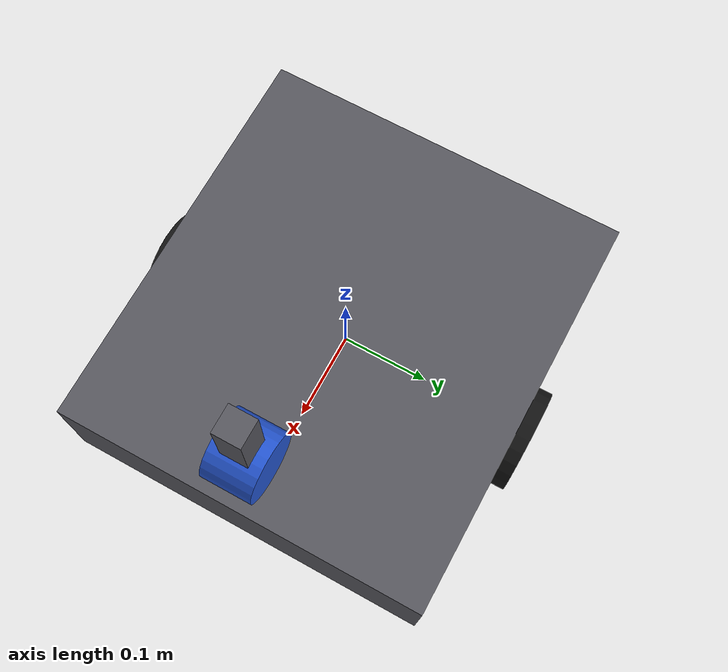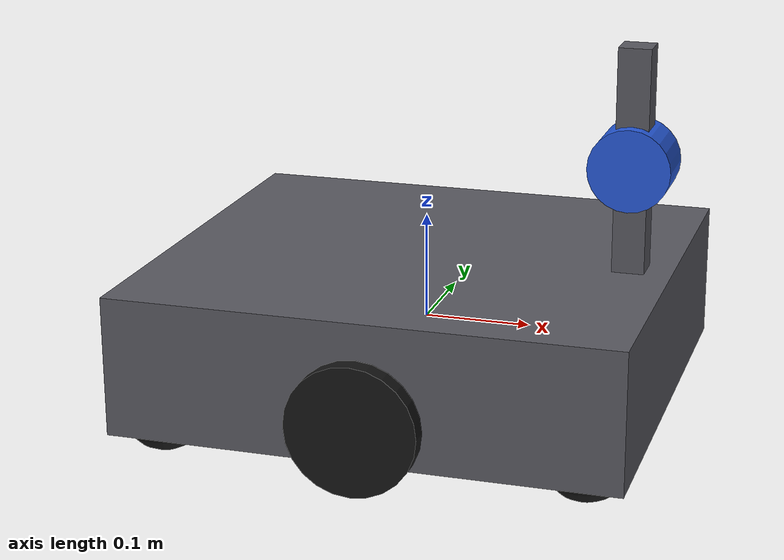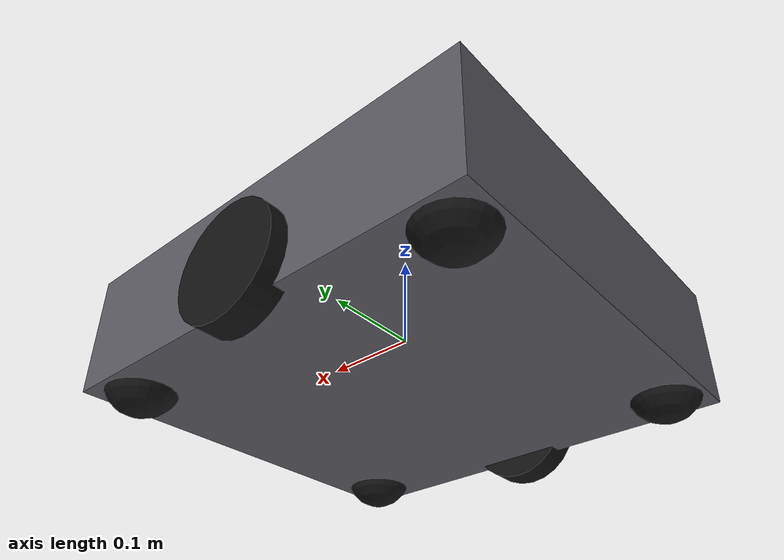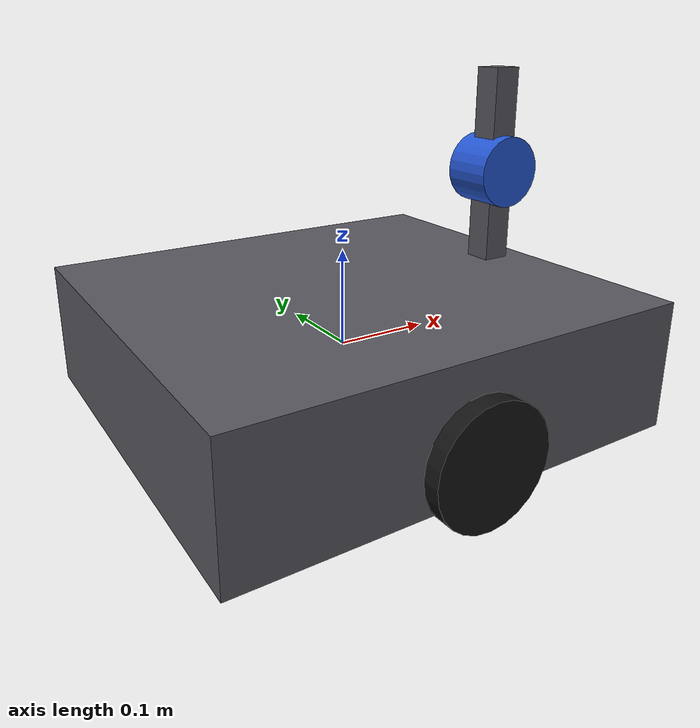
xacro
<?xml version="1.0"?>
<robot name="amr_robot" xmlns:xacro="http://www.ros.org/wiki/xacro">

  <!-- AMR REAL ROBOT DESCRIPTION                                -->
  <!-- Real robot only: geometry + frames                        -->
  <!-- Root body frame: base_link                                -->
  <!-- Convention: +x forward, +y left, +z up                    -->
  <!-- No Gazebo plugins                                         -->

  <!-- ===================== CONSTANTS ========================= -->
  <xacro:property name="pi_num" value="3.1415926535897931"/>

  <!-- ===================== BASE ============================== -->
  <xacro:property name="base_length" value="0.470"/>
  <xacro:property name="base_width"  value="0.430"/>
  <xacro:property name="base_height" value="0.130"/>
  <xacro:property name="base_mass"   value="4.0"/>
  <xacro:property name="ground_clearance" value="0.023"/>

  <!-- base_link is at chassis geometric center -->
  <xacro:property name="base_link_z" value="${ground_clearance + base_height/2.0}"/>

  <!-- ===================== DRIVE WHEELS ====================== -->
  <xacro:property name="wheel_radius"     value="0.060"/>
  <xacro:property name="wheel_width"      value="0.030"/>
  <xacro:property name="wheel_mass"       value="0.30"/>
  <xacro:property name="wheel_separation" value="0.435"/>

  <xacro:property name="wheel_x" value="0.000"/>
  <xacro:property name="wheel_y" value="${wheel_separation/2.0}"/>
  <xacro:property name="wheel_z" value="${wheel_radius - base_link_z}"/>

  <!-- ===================== CASTERS =========================== -->
  <xacro:property name="caster_radius" value="0.040"/>
  <xacro:property name="caster_width"  value="0.030"/>
  <xacro:property name="caster_mass"   value="0.10"/>

  <xacro:property name="caster_x_front" value="${ base_length/2.0 - caster_radius }"/>
  <xacro:property name="caster_x_rear"  value="${-base_length/2.0 + caster_radius }"/>
  <xacro:property name="caster_y_left"  value="${ base_width/2.0  - caster_radius }"/>
  <xacro:property name="caster_y_right" value="${-base_width/2.0  + caster_radius }"/>
  <xacro:property name="caster_z"       value="${caster_radius - base_link_z}"/>

  <!-- ===================== LIDAR ============================= -->
  <!-- Front side is +x -->
  <xacro:property name="lidar_radius" value="0.038"/>
  <xacro:property name="lidar_height" value="0.055"/>
  <xacro:property name="lidar_x" value="0.195"/>
  <xacro:property name="lidar_y" value="0.000"/>
  <xacro:property name="lidar_z_from_ground" value="0.388"/>
  <xacro:property name="lidar_z" value="${lidar_z_from_ground - base_link_z}"/>
  <xacro:property name="lidar_roll"  value="0.0"/>
  <xacro:property name="lidar_pitch" value="0.0"/>
  <xacro:property name="lidar_yaw"   value="${pi_num}"/>

  <xacro:property name="lidar_pole_size_x" value="0.030"/>
  <xacro:property name="lidar_pole_size_y" value="0.030"/>
  <xacro:property name="lidar_pole_height" value="${lidar_z - lidar_height/2.0}"/>
  <xacro:property name="lidar_pole_z" value="${lidar_pole_height/2.0}"/>

  <!-- ===================== IMU =============================== -->
  <xacro:property name="imu_size_x" value="0.040"/>
  <xacro:property name="imu_size_y" value="0.040"/>
  <xacro:property name="imu_size_z" value="0.015"/>
  <xacro:property name="imu_mass"   value="0.05"/>

  <xacro:property name="imu_x" value="0.000"/>
  <xacro:property name="imu_y" value="0.000"/>
  <xacro:property name="imu_z_from_ground" value="0.140"/>
  <xacro:property name="imu_z" value="${imu_z_from_ground - base_link_z}"/>
  <xacro:property name="imu_roll"  value="0.0"/>
  <xacro:property name="imu_pitch" value="0.0"/>
  <xacro:property name="imu_yaw"   value="0.0"/>

  <!-- ===================== MATERIALS ========================= -->
  <material name="base_gray">
    <color rgba="0.35 0.35 0.38 1.0"/>
  </material>

  <material name="wheel_black">
    <color rgba="0.08 0.08 0.08 1.0"/>
  </material>

  <material name="sensor_blue">
    <color rgba="0.15 0.35 0.85 1.0"/>
  </material>

  <material name="sensor_green">
    <color rgba="0.10 0.65 0.25 1.0"/>
  </material>

  <!-- ===================== MACROS ============================ -->
  <xacro:macro name="box_inertial" params="mass x y z">
    <inertial>
      <mass value="${mass}"/>
      <origin xyz="0 0 0" rpy="0 0 0"/>
      <inertia
        ixx="${(mass/12.0) * (y*y + z*z)}"
        ixy="0.0"
        ixz="0.0"
        iyy="${(mass/12.0) * (x*x + z*z)}"
        iyz="0.0"
        izz="${(mass/12.0) * (x*x + y*y)}"/>
    </inertial>
  </xacro:macro>

  <xacro:macro name="cylinder_y_inertial" params="mass radius length">
    <inertial>
      <mass value="${mass}"/>
      <origin xyz="0 0 0" rpy="0 0 0"/>
      <inertia
        ixx="${(mass/12.0) * (3.0*radius*radius + length*length)}"
        ixy="0.0"
        ixz="0.0"
        iyy="${0.5 * mass * radius * radius}"
        iyz="0.0"
        izz="${(mass/12.0) * (3.0*radius*radius + length*length)}"/>
    </inertial>
  </xacro:macro>

  <xacro:macro name="sphere_inertial" params="mass radius">
    <inertial>
      <mass value="${mass}"/>
      <origin xyz="0 0 0" rpy="0 0 0"/>
      <inertia
        ixx="${0.4 * mass * radius * radius}"
        ixy="0.0"
        ixz="0.0"
        iyy="${0.4 * mass * radius * radius}"
        iyz="0.0"
        izz="${0.4 * mass * radius * radius}"/>
    </inertial>
  </xacro:macro>

  <!-- ===================== BASE LINK ========================= -->
  <link name="base_link">
    <visual>
      <origin xyz="0 0 0" rpy="0 0 0"/>
      <geometry>
        <box size="${base_length} ${base_width} ${base_height}"/>
      </geometry>
      <material name="base_gray"/>
    </visual>

    <collision>
      <origin xyz="0 0 0" rpy="0 0 0"/>
      <geometry>
        <box size="${base_length} ${base_width} ${base_height}"/>
      </geometry>
    </collision>

    <xacro:box_inertial mass="${base_mass}" x="${base_length}" y="${base_width}" z="${base_height}"/>
  </link>

  <!-- ===================== LEFT DRIVE WHEEL ================== -->
  <link name="left_wheel_link">
    <visual>
      <origin xyz="0 0 0" rpy="${-pi_num/2} 0 0"/>
      <geometry>
        <cylinder radius="${wheel_radius}" length="${wheel_width}"/>
      </geometry>
      <material name="wheel_black"/>
    </visual>

    <collision>
      <origin xyz="0 0 0" rpy="${-pi_num/2} 0 0"/>
      <geometry>
        <cylinder radius="${wheel_radius}" length="${wheel_width}"/>
      </geometry>
    </collision>

    <xacro:cylinder_y_inertial mass="${wheel_mass}" radius="${wheel_radius}" length="${wheel_width}"/>
  </link>

  <joint name="left_wheel_joint" type="continuous">
    <parent link="base_link"/>
    <child link="left_wheel_link"/>
    <origin xyz="${wheel_x} ${wheel_y} ${wheel_z}" rpy="0 0 0"/>
    <axis xyz="0 1 0"/>
  </joint>

  <!-- ===================== RIGHT DRIVE WHEEL ================= -->
  <link name="right_wheel_link">
    <visual>
      <origin xyz="0 0 0" rpy="${-pi_num/2} 0 0"/>
      <geometry>
        <cylinder radius="${wheel_radius}" length="${wheel_width}"/>
      </geometry>
      <material name="wheel_black"/>
    </visual>

    <collision>
      <origin xyz="0 0 0" rpy="${-pi_num/2} 0 0"/>
      <geometry>
        <cylinder radius="${wheel_radius}" length="${wheel_width}"/>
      </geometry>
    </collision>

    <xacro:cylinder_y_inertial mass="${wheel_mass}" radius="${wheel_radius}" length="${wheel_width}"/>
  </link>

  <joint name="right_wheel_joint" type="continuous">
    <parent link="base_link"/>
    <child link="right_wheel_link"/>
    <origin xyz="${wheel_x} ${-wheel_y} ${wheel_z}" rpy="0 0 0"/>
    <axis xyz="0 1 0"/>
  </joint>

  <!-- ===================== CASTERS =========================== -->
  <link name="front_left_caster_link">
    <visual>
      <geometry>
        <sphere radius="${caster_radius}"/>
      </geometry>
      <material name="wheel_black"/>
    </visual>
    <collision>
      <geometry>
        <sphere radius="${caster_radius}"/>
      </geometry>
    </collision>
    <xacro:sphere_inertial mass="${caster_mass}" radius="${caster_radius}"/>
  </link>

  <joint name="front_left_caster_joint" type="fixed">
    <parent link="base_link"/>
    <child link="front_left_caster_link"/>
    <origin xyz="${caster_x_front} ${caster_y_left} ${caster_z}" rpy="0 0 0"/>
  </joint>

  <link name="front_right_caster_link">
    <visual>
      <geometry>
        <sphere radius="${caster_radius}"/>
      </geometry>
      <material name="wheel_black"/>
    </visual>
    <collision>
      <geometry>
        <sphere radius="${caster_radius}"/>
      </geometry>
    </collision>
    <xacro:sphere_inertial mass="${caster_mass}" radius="${caster_radius}"/>
  </link>

  <joint name="front_right_caster_joint" type="fixed">
    <parent link="base_link"/>
    <child link="front_right_caster_link"/>
    <origin xyz="${caster_x_front} ${caster_y_right} ${caster_z}" rpy="0 0 0"/>
  </joint>

  <link name="rear_left_caster_link">
    <visual>
      <geometry>
        <sphere radius="${caster_radius}"/>
      </geometry>
      <material name="wheel_black"/>
    </visual>
    <collision>
      <geometry>
        <sphere radius="${caster_radius}"/>
      </geometry>
    </collision>
    <xacro:sphere_inertial mass="${caster_mass}" radius="${caster_radius}"/>
  </link>

  <joint name="rear_left_caster_joint" type="fixed">
    <parent link="base_link"/>
    <child link="rear_left_caster_link"/>
    <origin xyz="${caster_x_rear} ${caster_y_left} ${caster_z}" rpy="0 0 0"/>
  </joint>

  <link name="rear_right_caster_link">
    <visual>
      <geometry>
        <sphere radius="${caster_radius}"/>
      </geometry>
      <material name="wheel_black"/>
    </visual>
    <collision>
      <geometry>
        <sphere radius="${caster_radius}"/>
      </geometry>
    </collision>
    <xacro:sphere_inertial mass="${caster_mass}" radius="${caster_radius}"/>
  </link>

  <joint name="rear_right_caster_joint" type="fixed">
    <parent link="base_link"/>
    <child link="rear_right_caster_link"/>
    <origin xyz="${caster_x_rear} ${caster_y_right} ${caster_z}" rpy="0 0 0"/>
  </joint>

  <!-- ===================== LIDAR MAST ======================== -->
  <link name="lidar_pole_link">
    <visual>
      <geometry>
        <box size="${lidar_pole_size_x} ${lidar_pole_size_y} ${lidar_pole_height}"/>
      </geometry>
      <material name="base_gray"/>
    </visual>

    <collision>
      <geometry>
        <box size="${lidar_pole_size_x} ${lidar_pole_size_y} ${lidar_pole_height}"/>
      </geometry>
    </collision>

    <inertial>
      <mass value="0.05"/>
      <origin xyz="0 0 0" rpy="0 0 0"/>
      <inertia ixx="1e-4" ixy="0" ixz="0" iyy="1e-4" iyz="0" izz="1e-4"/>
    </inertial>
  </link>

  <joint name="lidar_pole_joint" type="fixed">
    <parent link="base_link"/>
    <child link="lidar_pole_link"/>
    <origin xyz="${lidar_x} ${lidar_y} ${lidar_pole_z}" rpy="0 0 0"/>
  </joint>

  <!-- ===================== LIDAR BODY ======================== -->
  <link name="lidar_link">
    <visual>
      <origin xyz="0 0 0" rpy="${pi_num/2} 0 0"/>
      <geometry>
        <cylinder radius="${lidar_radius}" length="${lidar_height}"/>
      </geometry>
      <material name="sensor_blue"/>
    </visual>

    <collision>
      <origin xyz="0 0 0" rpy="${pi_num/2} 0 0"/>
      <geometry>
        <cylinder radius="${lidar_radius}" length="${lidar_height}"/>
      </geometry>
    </collision>

    <inertial>
      <mass value="0.15"/>
      <origin xyz="0 0 0" rpy="0 0 0"/>
      <inertia
        ixx="1e-4" ixy="0.0" ixz="0.0"
        iyy="1e-4" iyz="0.0"
        izz="1e-4"/>
    </inertial>
  </link>

  <joint name="lidar_joint" type="fixed">
    <parent link="lidar_pole_link"/>
    <child link="lidar_link"/>
    <origin xyz="0 0 ${lidar_height/2.0}" rpy="${lidar_roll} ${lidar_pitch} ${lidar_yaw}"/>
  </joint>

  <!-- ===================== IMU =============================== -->
  <link name="imu_link">
    <visual>
      <geometry>
        <box size="${imu_size_x} ${imu_size_y} ${imu_size_z}"/>
      </geometry>
      <material name="sensor_green"/>
    </visual>

    <collision>
      <geometry>
        <box size="${imu_size_x} ${imu_size_y} ${imu_size_z}"/>
      </geometry>
    </collision>

    <xacro:box_inertial mass="${imu_mass}" x="${imu_size_x}" y="${imu_size_y}" z="${imu_size_z}"/>
  </link>

  <joint name="imu_joint" type="fixed">
    <parent link="base_link"/>
    <child link="imu_link"/>
    <origin xyz="${imu_x} ${imu_y} ${imu_z}" rpy="${imu_roll} ${imu_pitch} ${imu_yaw}"/>
  </joint>

</robot>
